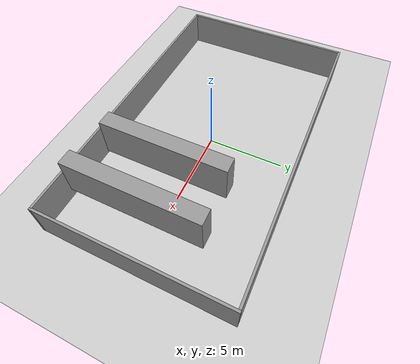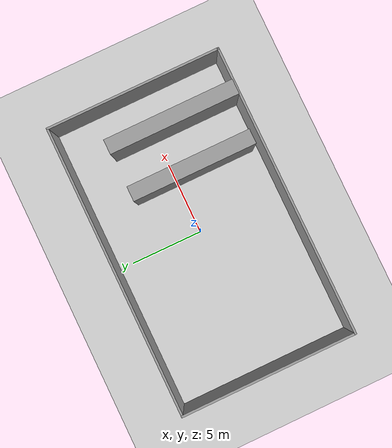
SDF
<sdf version="1.6">
 <world name="default">
  <light name="sun" type="directional">
   <pose>0 0 10 0 -0 0</pose>
   <diffuse>0.8 0.8 0.8 1</diffuse>
   <specular>0.2 0.2 0.2 1</specular>
   <attenuation>
    <range>1000</range>
    <constant>0.9</constant>
    <linear>0.01</linear>
    <quadratic>0.001</quadratic>
   </attenuation>
   <direction>-0.5 0.1 -0.9</direction>
  </light>
  <model name="ground_plane">
   <static>1</static>
   <link name="link">
    <collision name="collision">
     <geometry><plane><normal>0 0 1</normal><size>100 100</size></plane></geometry>
     <surface><friction><ode><mu>100</mu><mu2>50</mu2></ode></friction></surface>
    </collision>
    <visual name="visual">
     <cast_shadows>0</cast_shadows>
     <geometry><plane><normal>0 0 1</normal><size>100 100</size></plane></geometry>
     <material>
      <script><uri>file://media/materials/scripts/gazebo.material</uri><name>Gazebo/Grey</name></script>
     </material>
    </visual>
   </link>
  </model>
  <gravity>0 0 -9.8</gravity>
  <magnetic_field>6e-06 2.3e-05 -4.2e-05</magnetic_field>
  <atmosphere type="adiabatic"/>
  <physics name="default_physics" default="0" type="ode">
   <max_step_size>0.001</max_step_size>
   <real_time_factor>1</real_time_factor>
   <real_time_update_rate>1000</real_time_update_rate>
  </physics>
  <scene><ambient>0.4 0.4 0.4 1</ambient><background>0.7 0.7 0.7 1</background><shadows>1</shadows></scene>
  <spherical_coordinates>
   <surface_model>EARTH_WGS84</surface_model>
   <latitude_deg>0</latitude_deg>
   <longitude_deg>0</longitude_deg>
   <elevation>0</elevation>
   <heading_deg>0</heading_deg>
  </spherical_coordinates>
  <model name="Untitled">
   <link name="Wall_0">
    <collision name="Wall_0_Collision">
     <geometry><box><size>20.15 0.15 2.5</size></box></geometry>
     <pose>0 0 1.25 0 -0 0</pose>
    </collision>
    <visual name="Wall_0_Visual">
     <pose>0 0 1.25 0 -0 0</pose>
     <geometry><box><size>20.15 0.15 2.5</size></box></geometry>
     <material>
      <script><uri>file://media/materials/scripts/gazebo.material</uri><name>Gazebo/Grey</name></script>
      <ambient>1 1 1 1</ambient>
     </material>
     <meta><layer>0</layer></meta>
    </visual>
    <pose>0 6 0 0 -0 0</pose>
   </link>
   <link name="Wall_1">
    <collision name="Wall_1_Collision">
     <geometry><box><size>12.15 0.15 2.5</size></box></geometry>
     <pose>0 0 1.25 0 -0 0</pose>
    </collision>
    <visual name="Wall_1_Visual">
     <pose>0 0 1.25 0 -0 0</pose>
     <geometry><box><size>12.15 0.15 2.5</size></box></geometry>
     <material>
      <script><uri>file://media/materials/scripts/gazebo.material</uri><name>Gazebo/Grey</name></script>
      <ambient>1 1 1 1</ambient>
     </material>
     <meta><layer>0</layer></meta>
    </visual>
    <pose>10 0 0 0 0 -1.5708</pose>
   </link>
   <link name="Wall_2">
    <collision name="Wall_2_Collision">
     <geometry><box><size>20.15 0.15 2.5</size></box></geometry>
     <pose>0 0 1.25 0 -0 0</pose>
    </collision>
    <visual name="Wall_2_Visual">
     <pose>0 0 1.25 0 -0 0</pose>
     <geometry><box><size>20.15 0.15 2.5</size></box></geometry>
     <material>
      <script><uri>file://media/materials/scripts/gazebo.material</uri><name>Gazebo/Grey</name></script>
      <ambient>1 1 1 1</ambient>
     </material>
     <meta><layer>0</layer></meta>
    </visual>
    <pose>0 -6 0 0 -0 3.14159</pose>
   </link>
   <link name="Wall_3">
    <collision name="Wall_3_Collision">
     <geometry><box><size>12.15 0.15 2.5</size></box></geometry>
     <pose>0 0 1.25 0 -0 0</pose>
    </collision>
    <visual name="Wall_3_Visual">
     <pose>0 0 1.25 0 -0 0</pose>
     <geometry><box><size>12.15 0.15 2.5</size></box></geometry>
     <material>
      <script><uri>file://media/materials/scripts/gazebo.material</uri><name>Gazebo/Grey</name></script>
      <ambient>1 1 1 1</ambient>
     </material>
     <meta><layer>0</layer></meta>
    </visual>
    <pose>-10 0 0 0 -0 1.5708</pose>
   </link>
   <static>1</static>
  </model>
  <model name="unit_box">
   <pose>3.7905 -1.20937 2.44739 -0.0 -0.00 -0.0</pose>
   <link name="link">
    <inertial>
     <mass>100</mass>
     <inertia>
      <ixx>100.166667</ixx>
      <ixy>0</ixy>
      <ixz>00</ixz>
      <iyy>100.166667</iyy>
      <iyz>0</iyz>
      <izz>100.166667</izz>
     </inertia>
    </inertial>
    <collision name="collision"><geometry><box><size>1 8.26574 2.7</size></box></geometry></collision>
    <visual name="visual">
     <geometry><box><size>1 8.26574 2.7</size></box></geometry>
     <material>
      <script><name>Gazebo/Grey</name><uri>file://media/materials/scripts/gazebo.material</uri></script>
     </material>
    </visual>
   </link>
  </model>
  <model name="unit_box_0">
   <pose>7.03482 -1.37603 2.29369 -0.00 -0.0 -0.00</pose>
   <link name="link">
    <inertial>
     <mass>100</mass>
     <inertia>
      <ixx>100.166667</ixx>
      <ixy>0</ixy>
      <ixz>0</ixz>
      <iyy>100.166667</iyy>
      <iyz>0</iyz>
      <izz>100.166667</izz>
     </inertia>
    </inertial>
    <collision name="collision"><geometry><box><size>1 8.74928 2.7138</size></box></geometry></collision>
    <visual name="visual">
     <geometry><box><size>1 8.74928 2.7138</size></box></geometry>
     <material>
      <script><name>Gazebo/Grey</name><uri>file://media/materials/scripts/gazebo.material</uri></script>
     </material>
    </visual>
   </link>
  </model>
 </world>
</sdf>
